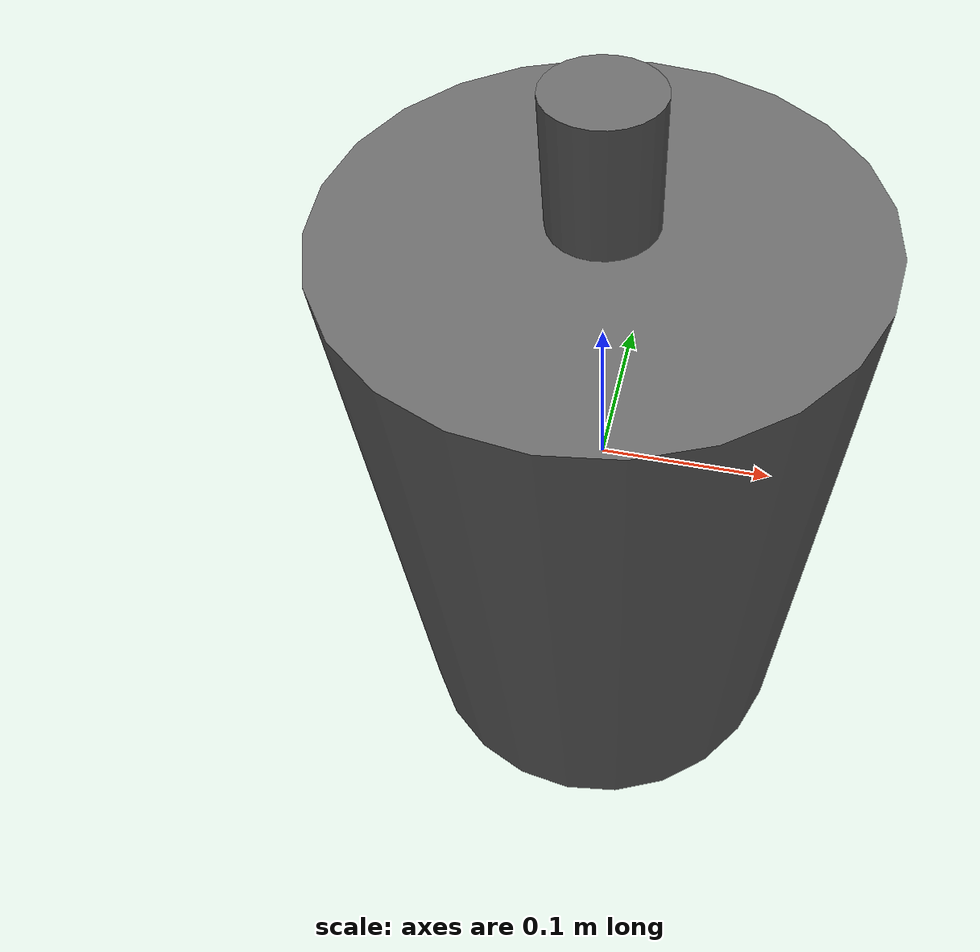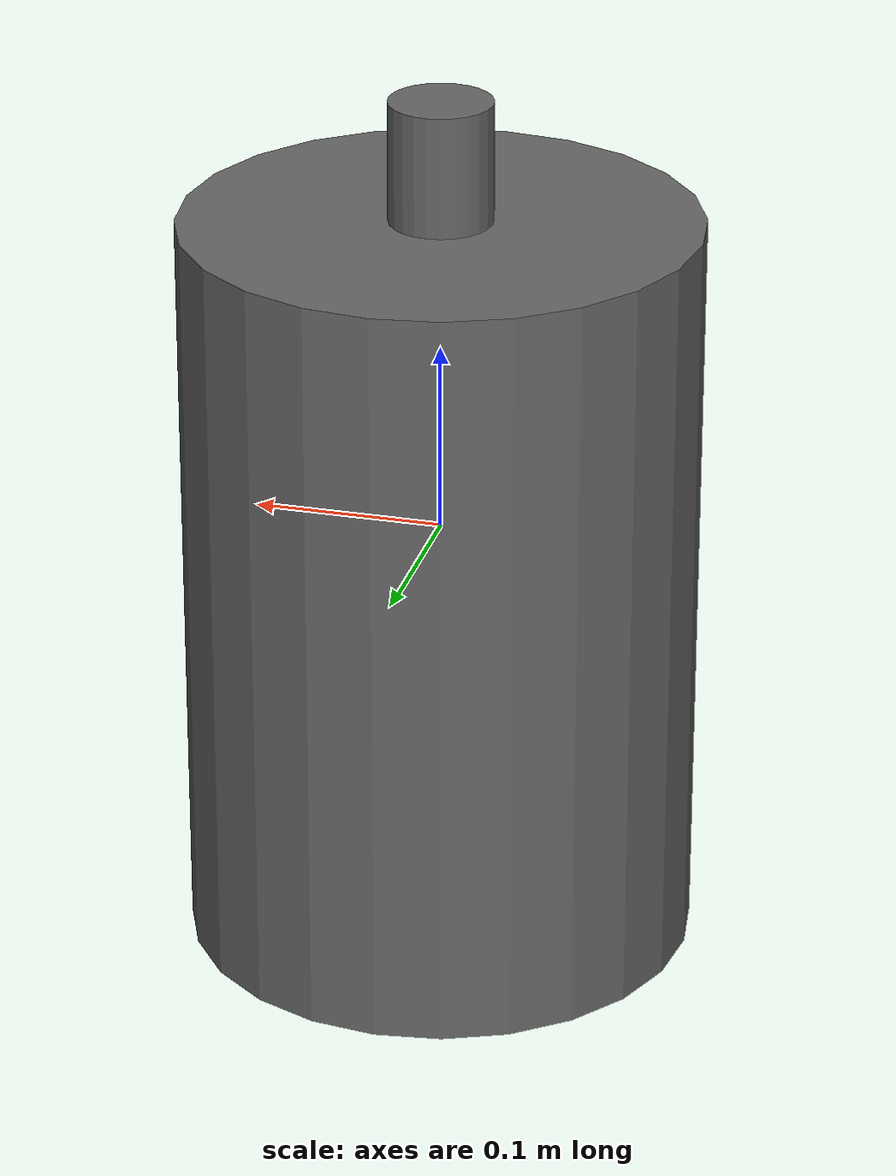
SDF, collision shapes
<?xml version="1.0"?>
<sdf version="1.7">
  <model name="jug_5_gallon">
      <!-- This is a model of an empty 5 gallon water jug. -->
    <!-- The moment of inertia is for a solid cylinder  -->
    <!-- with uniform density. -->
    <link name="jug">
      <inertial>
        <mass>0.8</mass>
        <inertia>
          <ixx>0.00848008333333333</ixx>
          <ixy>0</ixy>
          <ixz>0</ixz>
          <iyy>0.012947533333333332</iyy>
          <iyz>0</iyz>
          <izz>0.01394175</izz>
        </inertia>
      </inertial>
        <visual name="jug_visual">
        <geometry>
          <mesh>
            <scale>1 1 1</scale>
            <uri>jug_water_5_gallon.obj</uri>
          </mesh>
        </geometry>
        <material>
          <diffuse>0.4 0.4 0.4 1.0</diffuse>
        </material>
      </visual>

      <visual name="jug_contact_visual">
        <pose>0 0 -0.03 0 0 0</pose>
        <geometry>
          <cylinder>
            <radius>0.135</radius>
            <length>0.40</length>
          </cylinder>
        </geometry>
        <material>
          <diffuse>0.4 0.6 0.8 0.9</diffuse>
        </material>
      </visual>
      <collision name="jug_collision">
        <pose>0 0 -0.03 0 0 0</pose>
        <geometry>
          <cylinder>
            <radius>0.135</radius>
            <length>0.40</length>
          </cylinder>
        </geometry>
        <surface>
          <friction>
            <ode>
              <mu>0.5</mu>
              <mu2>0.5</mu2>
            </ode>
          </friction>
        </surface>
      </collision>

      <visual name="jug_top_contact_visual">
        <pose>0 0 0.201 0 0 0</pose>
        <geometry>
          <cylinder>
            <radius>0.027</radius>
            <length>0.065</length>
          </cylinder>
        </geometry>
        <material>
          <diffuse>0.4 0.6 0.8 0.9</diffuse>
        </material>
      </visual>
      <collision name="jug_top_collision">
        <pose>0 0 0.201 0 0 0</pose>
        <geometry>
          <cylinder>
            <radius>0.027</radius>
            <length>0.065</length>
          </cylinder>
        </geometry>
        <surface>
          <friction>
            <ode>
              <mu>0.5</mu>
              <mu2>0.5</mu2>
            </ode>
          </friction>
        </surface>
      </collision>

      <collision name="minus_x_lower_left_corner">
        <pose> 0 0.13 -0.23 0 0 0</pose>
        <geometry>
          <sphere>
            <radius>1e-7</radius>
          </sphere>
        </geometry>
        <surface>
          <friction>
            <ode>
              <mu>0.5</mu>
              <mu2>0.5</mu2>
            </ode>
          </friction>
        </surface>
      </collision>

      <collision name="minus_x_lower_right_corner">
        <pose> 0.13 0 -0.23 0 0 0</pose>
        <geometry>
          <sphere>
            <radius>1e-7</radius>
          </sphere>
        </geometry>
        <surface>
          <friction>
            <ode>
              <mu>0.5</mu>
              <mu2>0.5</mu2>
            </ode>
          </friction>
        </surface>
      </collision>

      <collision name="plus_x_lower_left_corner">
        <pose> 0 -0.13 -0.23 0 0 0</pose>
        <geometry>
          <sphere>
            <radius>1e-7</radius>
          </sphere>
        </geometry>
        <surface>
          <friction>
            <ode>
              <mu>0.5</mu>
              <mu2>0.5</mu2>
            </ode>
          </friction>
        </surface>
      </collision>

      <collision name="plus_x_lower_right_corner">
        <pose> -0.13 0 -0.23 0 0 0</pose>
        <geometry>
          <sphere>
            <radius>1e-7</radius>
          </sphere>
        </geometry>
        <surface>
          <friction>
            <ode>
              <mu>0.5</mu>
              <mu2>0.5</mu2>
            </ode>
          </friction>
        </surface>
      </collision>
    </link>
  </model>
</sdf>
